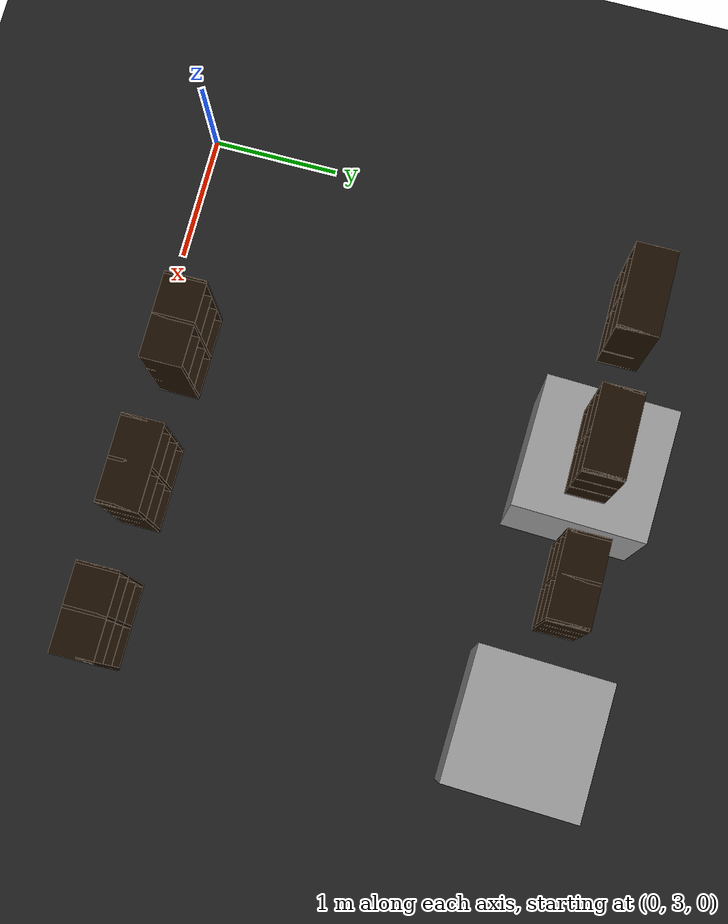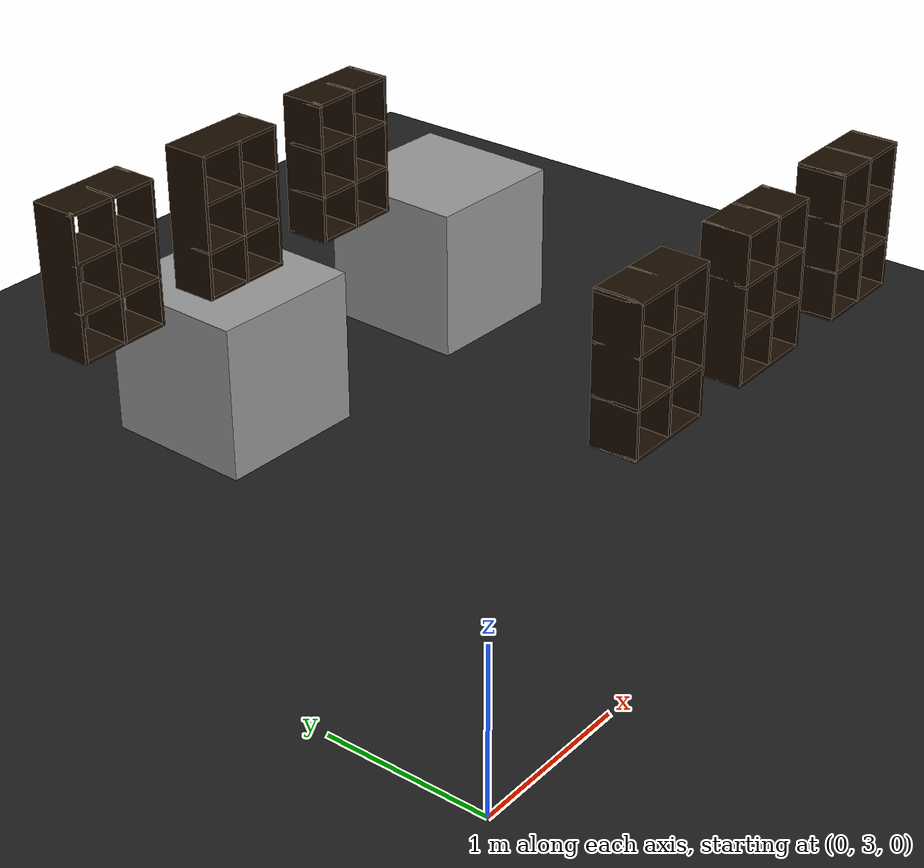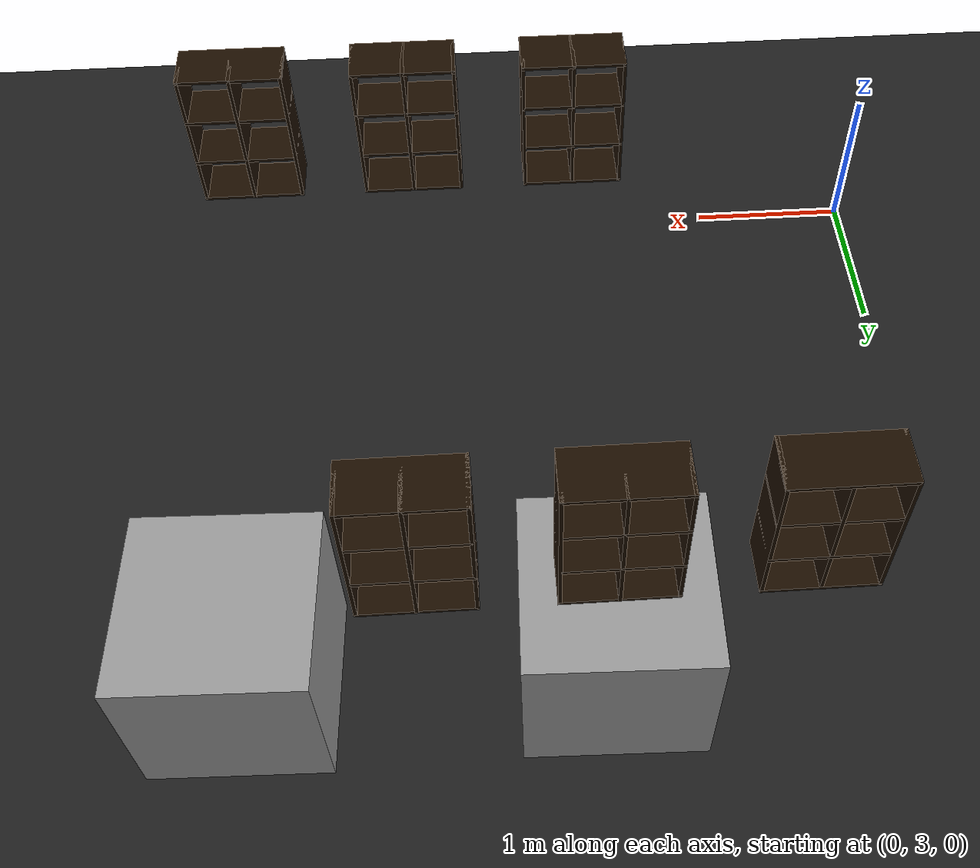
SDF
<sdf version="1.7">
 <world name="default">
  <model name="ground_plane">
   <static>1</static>
   <link name="link">
    <collision name="collision">
     <geometry><plane><normal>0 0 1</normal><size>100 100</size></plane></geometry>
     <surface><friction><ode><mu>100</mu><mu2>50</mu2></ode></friction></surface>
    </collision>
    <visual name="visual">
     <cast_shadows>0</cast_shadows>
     <geometry><plane><normal>0 0 1</normal><size>100 100</size></plane></geometry>
     <material>
      <script><uri>file://media/materials/scripts/gazebo.material</uri><name>Gazebo/BlackTransparent</name></script>
     </material>
    </visual>
   </link>
  </model>
  <model name="unit_box_7">
   <pose>1.99571 6.51837 0.5 0 0 -0.030066</pose>
   <link name="link">
    <inertial>
     <mass>1</mass>
     <inertia>
      <ixx>0.166667</ixx>
      <ixy>0</ixy>
      <ixz>0</ixz>
      <iyy>0.166667</iyy>
      <iyz>0</iyz>
      <izz>0.166667</izz>
     </inertia>
    </inertial>
    <collision name="collision"><geometry><box><size>1 1 1</size></box></geometry></collision>
    <visual name="visual">
     <geometry><box><size>1 1 1</size></box></geometry>
     <material>
      <script><name>Gazebo/Grey</name><uri>file://media/materials/scripts/gazebo.material</uri></script>
     </material>
    </visual>
   </link>
  </model>
  <model name="unit_box_8">
   <pose>3.99685 6.50298 0.5 0 0 -0.030583</pose>
   <link name="link">
    <inertial>
     <mass>1</mass>
     <inertia>
      <ixx>0.166667</ixx>
      <ixy>0</ixy>
      <ixz>0</ixz>
      <iyy>0.166667</iyy>
      <iyz>0</iyz>
      <izz>0.166667</izz>
     </inertia>
    </inertial>
    <collision name="collision"><geometry><box><size>1 1 1</size></box></geometry></collision>
    <visual name="visual">
     <geometry><box><size>1 1 1</size></box></geometry>
     <material>
      <script><name>Gazebo/Grey</name><uri>file://media/materials/scripts/gazebo.material</uri></script>
     </material>
    </visual>
   </link>
  </model>
  <model name="6_Cube_StorageE_clone_7">
   <link name="Wall_0">
    <pose>0 0 0.01 0 -0 0</pose>
    <inertial>
     <mass>1.6201</mass>
     <inertia><ixx>0.0119</ixx><iyy>0.0631</iyy><izz>0.0513</izz><ixy>0</ixy><ixz>0</ixz><iyz>0</iyz></inertia>
    </inertial>
    <collision name="Wall_0_Collision"><geometry><box><size>0.616 0.296 0.02</size></box></geometry></collision>
    <visual name="Wall_0_Visual">
     <geometry><box><size>0.616 0.296 0.02</size></box></geometry>
     <material>
      <script><uri>file://media/materials/scripts/gazebo.material</uri><name>Gazebo/Grey</name></script>
      <ambient>0.105882 0.0509804 0 1</ambient>
     </material>
    </visual>
   </link>
   <joint name="0_2" type="fixed">
    <pose>-0.308 0 0 0 -0 0</pose>
    <parent>Wall_2</parent>
    <child>Wall_0</child>
    <axis><xyz>1 0 0</xyz><limit><lower>-1e+16</lower><upper>1e+16</upper></limit></axis>
   </joint>
   <joint name="0_12" type="fixed">
    <parent>Wall_12</parent>
    <child>Wall_0</child>
    <axis><xyz>0 0 1</xyz><limit><lower>-1e+16</lower><upper>1e+16</upper></limit></axis>
   </joint>
   <joint name="0_4" type="fixed">
    <pose>0.308 0 0 0 -0 0</pose>
    <parent>Wall_4</parent>
    <child>Wall_0</child>
    <axis><xyz>1 0 0</xyz><limit><lower>-1e+16</lower><upper>1e+16</upper></limit></axis>
   </joint>
   <link name="Wall_10">
    <pose>0 0 0.61 0 -0 0</pose>
    <inertial>
     <mass>1.6201</mass>
     <inertia><ixx>0.0119</ixx><iyy>0.0631</iyy><izz>0.0513</izz><ixy>0</ixy><ixz>0</ixz><iyz>0</iyz></inertia>
    </inertial>
    <collision name="Wall_10_Collision"><geometry><box><size>0.616 0.296 0.02</size></box></geometry></collision>
    <visual name="Wall_10_Visual">
     <geometry><box><size>0.616 0.296 0.02</size></box></geometry>
     <material>
      <script><uri>file://media/materials/scripts/gazebo.material</uri><name>Gazebo/Grey</name></script>
      <ambient>0.105882 0.0509804 0 1</ambient>
     </material>
    </visual>
   </link>
   <joint name="10_2" type="fixed">
    <pose>-0.308 0 0 0 -0 0</pose>
    <parent>Wall_2</parent>
    <child>Wall_10</child>
    <axis><xyz>1 0 0</xyz><limit><lower>-1e+16</lower><upper>1e+16</upper></limit></axis>
   </joint>
   <joint name="10_12" type="fixed">
    <parent>Wall_12</parent>
    <child>Wall_10</child>
    <axis><xyz>0 0 1</xyz><limit><lower>-1e+16</lower><upper>1e+16</upper></limit></axis>
   </joint>
   <joint name="10_4" type="fixed">
    <pose>0.308 0 0 0 -0 0</pose>
    <parent>Wall_4</parent>
    <child>Wall_10</child>
    <axis><xyz>1 0 0</xyz><limit><lower>-1e+16</lower><upper>1e+16</upper></limit></axis>
   </joint>
   <link name="Wall_12">
    <pose>0 0 0.4575 0 -0 0</pose>
    <inertial>
     <mass>2.4065</mass>
     <inertia><ixx>0.0177</ixx><iyy>0.1855</iyy><izz>0.168</izz><ixy>0</ixy><ixz>0</ixz><iyz>0</iyz></inertia>
    </inertial>
    <collision name="Wall_12_Collision"><geometry><box><size>0.02 0.296 0.915</size></box></geometry></collision>
    <visual name="Wall_12_Visual">
     <geometry><box><size>0.02 0.296 0.915</size></box></geometry>
     <material>
      <script><uri>file://media/materials/scripts/gazebo.material</uri><name>Gazebo/Grey</name></script>
      <ambient>0.105882 0.0509804 0 1</ambient>
     </material>
    </visual>
   </link>
   <link name="Wall_2">
    <pose>-0.298 0 0.4575 0 -0 0</pose>
    <inertial>
     <mass>2.4065</mass>
     <inertia><ixx>0.0177</ixx><iyy>0.1855</iyy><izz>0.168</izz><ixy>0</ixy><ixz>0</ixz><iyz>0</iyz></inertia>
    </inertial>
    <collision name="Wall_2_Collision"><geometry><box><size>0.02 0.296 0.915</size></box></geometry></collision>
    <visual name="Wall_2_Visual">
     <geometry><box><size>0.02 0.296 0.915</size></box></geometry>
     <material>
      <script><uri>file://media/materials/scripts/gazebo.material</uri><name>Gazebo/Grey</name></script>
      <ambient>0.105882 0.0509804 0 1</ambient>
     </material>
    </visual>
   </link>
   <link name="Wall_4">
    <pose>0.298 0 0.4575 0 -0 0</pose>
    <inertial>
     <mass>2.4065</mass>
     <inertia><ixx>0.0177</ixx><iyy>0.1855</iyy><izz>0.168</izz><ixy>0</ixy><ixz>0</ixz><iyz>0</iyz></inertia>
    </inertial>
    <collision name="Wall_4_Collision"><geometry><box><size>0.02 0.296 0.915</size></box></geometry></collision>
    <visual name="Wall_4_Visual">
     <geometry><box><size>0.02 0.296 0.915</size></box></geometry>
     <material>
      <script><uri>file://media/materials/scripts/gazebo.material</uri><name>Gazebo/Grey</name></script>
      <ambient>0.105882 0.0509804 0 1</ambient>
     </material>
    </visual>
   </link>
   <link name="Wall_6">
    <pose>0 0 0.905 0 -0 0</pose>
    <inertial>
     <mass>1.6201</mass>
     <inertia><ixx>0.0119</ixx><iyy>0.0631</iyy><izz>0.0513</izz><ixy>0</ixy><ixz>0</ixz><iyz>0</iyz></inertia>
    </inertial>
    <collision name="Wall_6_Collision"><geometry><box><size>0.616 0.296 0.02</size></box></geometry></collision>
    <visual name="Wall_6_Visual">
     <geometry><box><size>0.616 0.296 0.02</size></box></geometry>
     <material>
      <script><uri>file://media/materials/scripts/gazebo.material</uri><name>Gazebo/Grey</name></script>
      <ambient>0.105882 0.0509804 0 1</ambient>
     </material>
    </visual>
   </link>
   <joint name="6_2" type="fixed">
    <pose>-0.308 0 0 0 -0 0</pose>
    <parent>Wall_2</parent>
    <child>Wall_6</child>
    <axis><xyz>2 0 0</xyz><limit><lower>-1e+16</lower><upper>1e+16</upper></limit></axis>
   </joint>
   <joint name="6_12" type="fixed">
    <parent>Wall_12</parent>
    <child>Wall_6</child>
    <axis><xyz>0 0 1</xyz><limit><lower>-1e+16</lower><upper>1e+16</upper></limit></axis>
   </joint>
   <joint name="6_4" type="fixed">
    <pose>0.308 0 0 0 -0 0</pose>
    <parent>Wall_4</parent>
    <child>Wall_6</child>
    <axis><xyz>1 0 0</xyz><limit><lower>-1e+16</lower><upper>1e+16</upper></limit></axis>
   </joint>
   <link name="Wall_8">
    <pose>0 0 0.305 0 -0 0</pose>
    <inertial>
     <mass>1.6201</mass>
     <inertia><ixx>0.0119</ixx><iyy>0.0631</iyy><izz>0.0513</izz><ixy>0</ixy><ixz>0</ixz><iyz>0</iyz></inertia>
    </inertial>
    <collision name="Wall_8_Collision"><geometry><box><size>0.616 0.296 0.02</size></box></geometry></collision>
    <visual name="Wall_8_Visual">
     <geometry><box><size>0.616 0.296 0.02</size></box></geometry>
     <material>
      <script><uri>file://media/materials/scripts/gazebo.material</uri><name>Gazebo/Grey</name></script>
      <ambient>0.105882 0.0509804 0 1</ambient>
     </material>
    </visual>
   </link>
   <joint name="8_2" type="fixed">
    <pose>-0.308 0 0 0 -0 0</pose>
    <parent>Wall_2</parent>
    <child>Wall_8</child>
    <axis><xyz>1 0 0</xyz><limit><lower>-1e+16</lower><upper>1e+16</upper></limit></axis>
   </joint>
   <joint name="8_12" type="fixed">
    <parent>Wall_12</parent>
    <child>Wall_8</child>
    <axis><xyz>0 0 1</xyz><limit><lower>-1e+16</lower><upper>1e+16</upper></limit></axis>
   </joint>
   <joint name="8_4" type="fixed">
    <pose>0.308 0 0 0 -0 0</pose>
    <parent>Wall_4</parent>
    <child>Wall_8</child>
    <axis><xyz>1 0 0</xyz><limit><lower>-1e+16</lower><upper>1e+16</upper></limit></axis>
   </joint>
   <static>1</static>
   <pose>1 6.5 1.01 0 -0 0</pose>
  </model>
  <model name="6_Cube_StorageE_clone_8">
   <link name="Wall_0">
    <pose>0 0 0.01 0 -0 0</pose>
    <inertial>
     <mass>1.6201</mass>
     <inertia><ixx>0.0119</ixx><iyy>0.0631</iyy><izz>0.0513</izz><ixy>0</ixy><ixz>0</ixz><iyz>0</iyz></inertia>
    </inertial>
    <collision name="Wall_0_Collision"><geometry><box><size>0.616 0.296 0.02</size></box></geometry></collision>
    <visual name="Wall_0_Visual">
     <geometry><box><size>0.616 0.296 0.02</size></box></geometry>
     <material>
      <script><uri>file://media/materials/scripts/gazebo.material</uri><name>Gazebo/Grey</name></script>
      <ambient>0.105882 0.0509804 0 1</ambient>
     </material>
    </visual>
   </link>
   <joint name="0_2" type="fixed">
    <pose>-0.308 0 0 0 -0 0</pose>
    <parent>Wall_2</parent>
    <child>Wall_0</child>
    <axis><xyz>1 0 0</xyz><limit><lower>-1e+16</lower><upper>1e+16</upper></limit></axis>
   </joint>
   <joint name="0_12" type="fixed">
    <parent>Wall_12</parent>
    <child>Wall_0</child>
    <axis><xyz>0 0 1</xyz><limit><lower>-1e+16</lower><upper>1e+16</upper></limit></axis>
   </joint>
   <joint name="0_4" type="fixed">
    <pose>0.308 0 0 0 -0 0</pose>
    <parent>Wall_4</parent>
    <child>Wall_0</child>
    <axis><xyz>1 0 0</xyz><limit><lower>-1e+16</lower><upper>1e+16</upper></limit></axis>
   </joint>
   <link name="Wall_10">
    <pose>0 0 0.61 0 -0 0</pose>
    <inertial>
     <mass>1.6201</mass>
     <inertia><ixx>0.0119</ixx><iyy>0.0631</iyy><izz>0.0513</izz><ixy>0</ixy><ixz>0</ixz><iyz>0</iyz></inertia>
    </inertial>
    <collision name="Wall_10_Collision"><geometry><box><size>0.616 0.296 0.02</size></box></geometry></collision>
    <visual name="Wall_10_Visual">
     <geometry><box><size>0.616 0.296 0.02</size></box></geometry>
     <material>
      <script><uri>file://media/materials/scripts/gazebo.material</uri><name>Gazebo/Grey</name></script>
      <ambient>0.105882 0.0509804 0 1</ambient>
     </material>
    </visual>
   </link>
   <joint name="10_2" type="fixed">
    <pose>-0.308 0 0 0 -0 0</pose>
    <parent>Wall_2</parent>
    <child>Wall_10</child>
    <axis><xyz>1 0 0</xyz><limit><lower>-1e+16</lower><upper>1e+16</upper></limit></axis>
   </joint>
   <joint name="10_12" type="fixed">
    <parent>Wall_12</parent>
    <child>Wall_10</child>
    <axis><xyz>0 0 1</xyz><limit><lower>-1e+16</lower><upper>1e+16</upper></limit></axis>
   </joint>
   <joint name="10_4" type="fixed">
    <pose>0.308 0 0 0 -0 0</pose>
    <parent>Wall_4</parent>
    <child>Wall_10</child>
    <axis><xyz>1 0 0</xyz><limit><lower>-1e+16</lower><upper>1e+16</upper></limit></axis>
   </joint>
   <link name="Wall_12">
    <pose>0 0 0.4575 0 -0 0</pose>
    <inertial>
     <mass>2.4065</mass>
     <inertia><ixx>0.0177</ixx><iyy>0.1855</iyy><izz>0.168</izz><ixy>0</ixy><ixz>0</ixz><iyz>0</iyz></inertia>
    </inertial>
    <collision name="Wall_12_Collision"><geometry><box><size>0.02 0.296 0.915</size></box></geometry></collision>
    <visual name="Wall_12_Visual">
     <geometry><box><size>0.02 0.296 0.915</size></box></geometry>
     <material>
      <script><uri>file://media/materials/scripts/gazebo.material</uri><name>Gazebo/Grey</name></script>
      <ambient>0.105882 0.0509804 0 1</ambient>
     </material>
    </visual>
   </link>
   <link name="Wall_2">
    <pose>-0.298 0 0.4575 0 -0 0</pose>
    <inertial>
     <mass>2.4065</mass>
     <inertia><ixx>0.0177</ixx><iyy>0.1855</iyy><izz>0.168</izz><ixy>0</ixy><ixz>0</ixz><iyz>0</iyz></inertia>
    </inertial>
    <collision name="Wall_2_Collision"><geometry><box><size>0.02 0.296 0.915</size></box></geometry></collision>
    <visual name="Wall_2_Visual">
     <geometry><box><size>0.02 0.296 0.915</size></box></geometry>
     <material>
      <script><uri>file://media/materials/scripts/gazebo.material</uri><name>Gazebo/Grey</name></script>
      <ambient>0.105882 0.0509804 0 1</ambient>
     </material>
    </visual>
   </link>
   <link name="Wall_4">
    <pose>0.298 0 0.4575 0 -0 0</pose>
    <inertial>
     <mass>2.4065</mass>
     <inertia><ixx>0.0177</ixx><iyy>0.1855</iyy><izz>0.168</izz><ixy>0</ixy><ixz>0</ixz><iyz>0</iyz></inertia>
    </inertial>
    <collision name="Wall_4_Collision"><geometry><box><size>0.02 0.296 0.915</size></box></geometry></collision>
    <visual name="Wall_4_Visual">
     <geometry><box><size>0.02 0.296 0.915</size></box></geometry>
     <material>
      <script><uri>file://media/materials/scripts/gazebo.material</uri><name>Gazebo/Grey</name></script>
      <ambient>0.105882 0.0509804 0 1</ambient>
     </material>
    </visual>
   </link>
   <link name="Wall_6">
    <pose>0 0 0.905 0 -0 0</pose>
    <inertial>
     <mass>1.6201</mass>
     <inertia><ixx>0.0119</ixx><iyy>0.0631</iyy><izz>0.0513</izz><ixy>0</ixy><ixz>0</ixz><iyz>0</iyz></inertia>
    </inertial>
    <collision name="Wall_6_Collision"><geometry><box><size>0.616 0.296 0.02</size></box></geometry></collision>
    <visual name="Wall_6_Visual">
     <geometry><box><size>0.616 0.296 0.02</size></box></geometry>
     <material>
      <script><uri>file://media/materials/scripts/gazebo.material</uri><name>Gazebo/Grey</name></script>
      <ambient>0.105882 0.0509804 0 1</ambient>
     </material>
    </visual>
   </link>
   <joint name="6_2" type="fixed">
    <pose>-0.308 0 0 0 -0 0</pose>
    <parent>Wall_2</parent>
    <child>Wall_6</child>
    <axis><xyz>2 0 0</xyz><limit><lower>-1e+16</lower><upper>1e+16</upper></limit></axis>
   </joint>
   <joint name="6_12" type="fixed">
    <parent>Wall_12</parent>
    <child>Wall_6</child>
    <axis><xyz>0 0 1</xyz><limit><lower>-1e+16</lower><upper>1e+16</upper></limit></axis>
   </joint>
   <joint name="6_4" type="fixed">
    <pose>0.308 0 0 0 -0 0</pose>
    <parent>Wall_4</parent>
    <child>Wall_6</child>
    <axis><xyz>1 0 0</xyz><limit><lower>-1e+16</lower><upper>1e+16</upper></limit></axis>
   </joint>
   <link name="Wall_8">
    <pose>0 0 0.305 0 -0 0</pose>
    <inertial>
     <mass>1.6201</mass>
     <inertia><ixx>0.0119</ixx><iyy>0.0631</iyy><izz>0.0513</izz><ixy>0</ixy><ixz>0</ixz><iyz>0</iyz></inertia>
    </inertial>
    <collision name="Wall_8_Collision"><geometry><box><size>0.616 0.296 0.02</size></box></geometry></collision>
    <visual name="Wall_8_Visual">
     <geometry><box><size>0.616 0.296 0.02</size></box></geometry>
     <material>
      <script><uri>file://media/materials/scripts/gazebo.material</uri><name>Gazebo/Grey</name></script>
      <ambient>0.105882 0.0509804 0 1</ambient>
     </material>
    </visual>
   </link>
   <joint name="8_2" type="fixed">
    <pose>-0.308 0 0 0 -0 0</pose>
    <parent>Wall_2</parent>
    <child>Wall_8</child>
    <axis><xyz>1 0 0</xyz><limit><lower>-1e+16</lower><upper>1e+16</upper></limit></axis>
   </joint>
   <joint name="8_12" type="fixed">
    <parent>Wall_12</parent>
    <child>Wall_8</child>
    <axis><xyz>0 0 1</xyz><limit><lower>-1e+16</lower><upper>1e+16</upper></limit></axis>
   </joint>
   <joint name="8_4" type="fixed">
    <pose>0.308 0 0 0 -0 0</pose>
    <parent>Wall_4</parent>
    <child>Wall_8</child>
    <axis><xyz>1 0 0</xyz><limit><lower>-1e+16</lower><upper>1e+16</upper></limit></axis>
   </joint>
   <static>1</static>
   <pose>2 6.5 1.01 0 -0 0</pose>
  </model>
  <model name="6_Cube_StorageE_clone_9">
   <link name="Wall_0">
    <pose>0 0 0.01 0 -0 0</pose>
    <inertial>
     <mass>1.6201</mass>
     <inertia><ixx>0.0119</ixx><iyy>0.0631</iyy><izz>0.0513</izz><ixy>0</ixy><ixz>0</ixz><iyz>0</iyz></inertia>
    </inertial>
    <collision name="Wall_0_Collision"><geometry><box><size>0.616 0.296 0.02</size></box></geometry></collision>
    <visual name="Wall_0_Visual">
     <geometry><box><size>0.616 0.296 0.02</size></box></geometry>
     <material>
      <script><uri>file://media/materials/scripts/gazebo.material</uri><name>Gazebo/Grey</name></script>
      <ambient>0.105882 0.0509804 0 1</ambient>
     </material>
    </visual>
   </link>
   <joint name="0_2" type="fixed">
    <pose>-0.308 0 0 0 -0 0</pose>
    <parent>Wall_2</parent>
    <child>Wall_0</child>
    <axis><xyz>1 0 0</xyz><limit><lower>-1e+16</lower><upper>1e+16</upper></limit></axis>
   </joint>
   <joint name="0_12" type="fixed">
    <parent>Wall_12</parent>
    <child>Wall_0</child>
    <axis><xyz>0 0 1</xyz><limit><lower>-1e+16</lower><upper>1e+16</upper></limit></axis>
   </joint>
   <joint name="0_4" type="fixed">
    <pose>0.308 0 0 0 -0 0</pose>
    <parent>Wall_4</parent>
    <child>Wall_0</child>
    <axis><xyz>1 0 0</xyz><limit><lower>-1e+16</lower><upper>1e+16</upper></limit></axis>
   </joint>
   <link name="Wall_10">
    <pose>0 0 0.61 0 -0 0</pose>
    <inertial>
     <mass>1.6201</mass>
     <inertia><ixx>0.0119</ixx><iyy>0.0631</iyy><izz>0.0513</izz><ixy>0</ixy><ixz>0</ixz><iyz>0</iyz></inertia>
    </inertial>
    <collision name="Wall_10_Collision"><geometry><box><size>0.616 0.296 0.02</size></box></geometry></collision>
    <visual name="Wall_10_Visual">
     <geometry><box><size>0.616 0.296 0.02</size></box></geometry>
     <material>
      <script><uri>file://media/materials/scripts/gazebo.material</uri><name>Gazebo/Grey</name></script>
      <ambient>0.105882 0.0509804 0 1</ambient>
     </material>
    </visual>
   </link>
   <joint name="10_2" type="fixed">
    <pose>-0.308 0 0 0 -0 0</pose>
    <parent>Wall_2</parent>
    <child>Wall_10</child>
    <axis><xyz>1 0 0</xyz><limit><lower>-1e+16</lower><upper>1e+16</upper></limit></axis>
   </joint>
   <joint name="10_12" type="fixed">
    <parent>Wall_12</parent>
    <child>Wall_10</child>
    <axis><xyz>0 0 1</xyz><limit><lower>-1e+16</lower><upper>1e+16</upper></limit></axis>
   </joint>
   <joint name="10_4" type="fixed">
    <pose>0.308 0 0 0 -0 0</pose>
    <parent>Wall_4</parent>
    <child>Wall_10</child>
    <axis><xyz>1 0 0</xyz><limit><lower>-1e+16</lower><upper>1e+16</upper></limit></axis>
   </joint>
   <link name="Wall_12">
    <pose>0 0 0.4575 0 -0 0</pose>
    <inertial>
     <mass>2.4065</mass>
     <inertia><ixx>0.0177</ixx><iyy>0.1855</iyy><izz>0.168</izz><ixy>0</ixy><ixz>0</ixz><iyz>0</iyz></inertia>
    </inertial>
    <collision name="Wall_12_Collision"><geometry><box><size>0.02 0.296 0.915</size></box></geometry></collision>
    <visual name="Wall_12_Visual">
     <geometry><box><size>0.02 0.296 0.915</size></box></geometry>
     <material>
      <script><uri>file://media/materials/scripts/gazebo.material</uri><name>Gazebo/Grey</name></script>
      <ambient>0.105882 0.0509804 0 1</ambient>
     </material>
    </visual>
   </link>
   <link name="Wall_2">
    <pose>-0.298 0 0.4575 0 -0 0</pose>
    <inertial>
     <mass>2.4065</mass>
     <inertia><ixx>0.0177</ixx><iyy>0.1855</iyy><izz>0.168</izz><ixy>0</ixy><ixz>0</ixz><iyz>0</iyz></inertia>
    </inertial>
    <collision name="Wall_2_Collision"><geometry><box><size>0.02 0.296 0.915</size></box></geometry></collision>
    <visual name="Wall_2_Visual">
     <geometry><box><size>0.02 0.296 0.915</size></box></geometry>
     <material>
      <script><uri>file://media/materials/scripts/gazebo.material</uri><name>Gazebo/Grey</name></script>
      <ambient>0.105882 0.0509804 0 1</ambient>
     </material>
    </visual>
   </link>
   <link name="Wall_4">
    <pose>0.298 0 0.4575 0 -0 0</pose>
    <inertial>
     <mass>2.4065</mass>
     <inertia><ixx>0.0177</ixx><iyy>0.1855</iyy><izz>0.168</izz><ixy>0</ixy><ixz>0</ixz><iyz>0</iyz></inertia>
    </inertial>
    <collision name="Wall_4_Collision"><geometry><box><size>0.02 0.296 0.915</size></box></geometry></collision>
    <visual name="Wall_4_Visual">
     <geometry><box><size>0.02 0.296 0.915</size></box></geometry>
     <material>
      <script><uri>file://media/materials/scripts/gazebo.material</uri><name>Gazebo/Grey</name></script>
      <ambient>0.105882 0.0509804 0 1</ambient>
     </material>
    </visual>
   </link>
   <link name="Wall_6">
    <pose>0 0 0.905 0 -0 0</pose>
    <inertial>
     <mass>1.6201</mass>
     <inertia><ixx>0.0119</ixx><iyy>0.0631</iyy><izz>0.0513</izz><ixy>0</ixy><ixz>0</ixz><iyz>0</iyz></inertia>
    </inertial>
    <collision name="Wall_6_Collision"><geometry><box><size>0.616 0.296 0.02</size></box></geometry></collision>
    <visual name="Wall_6_Visual">
     <geometry><box><size>0.616 0.296 0.02</size></box></geometry>
     <material>
      <script><uri>file://media/materials/scripts/gazebo.material</uri><name>Gazebo/Grey</name></script>
      <ambient>0.105882 0.0509804 0 1</ambient>
     </material>
    </visual>
   </link>
   <joint name="6_2" type="fixed">
    <pose>-0.308 0 0 0 -0 0</pose>
    <parent>Wall_2</parent>
    <child>Wall_6</child>
    <axis><xyz>2 0 0</xyz><limit><lower>-1e+16</lower><upper>1e+16</upper></limit></axis>
   </joint>
   <joint name="6_12" type="fixed">
    <parent>Wall_12</parent>
    <child>Wall_6</child>
    <axis><xyz>0 0 1</xyz><limit><lower>-1e+16</lower><upper>1e+16</upper></limit></axis>
   </joint>
   <joint name="6_4" type="fixed">
    <pose>0.308 0 0 0 -0 0</pose>
    <parent>Wall_4</parent>
    <child>Wall_6</child>
    <axis><xyz>1 0 0</xyz><limit><lower>-1e+16</lower><upper>1e+16</upper></limit></axis>
   </joint>
   <link name="Wall_8">
    <pose>0 0 0.305 0 -0 0</pose>
    <inertial>
     <mass>1.6201</mass>
     <inertia><ixx>0.0119</ixx><iyy>0.0631</iyy><izz>0.0513</izz><ixy>0</ixy><ixz>0</ixz><iyz>0</iyz></inertia>
    </inertial>
    <collision name="Wall_8_Collision"><geometry><box><size>0.616 0.296 0.02</size></box></geometry></collision>
    <visual name="Wall_8_Visual">
     <geometry><box><size>0.616 0.296 0.02</size></box></geometry>
     <material>
      <script><uri>file://media/materials/scripts/gazebo.material</uri><name>Gazebo/Grey</name></script>
      <ambient>0.105882 0.0509804 0 1</ambient>
     </material>
    </visual>
   </link>
   <joint name="8_2" type="fixed">
    <pose>-0.308 0 0 0 -0 0</pose>
    <parent>Wall_2</parent>
    <child>Wall_8</child>
    <axis><xyz>1 0 0</xyz><limit><lower>-1e+16</lower><upper>1e+16</upper></limit></axis>
   </joint>
   <joint name="8_12" type="fixed">
    <parent>Wall_12</parent>
    <child>Wall_8</child>
    <axis><xyz>0 0 1</xyz><limit><lower>-1e+16</lower><upper>1e+16</upper></limit></axis>
   </joint>
   <joint name="8_4" type="fixed">
    <pose>0.308 0 0 0 -0 0</pose>
    <parent>Wall_4</parent>
    <child>Wall_8</child>
    <axis><xyz>1 0 0</xyz><limit><lower>-1e+16</lower><upper>1e+16</upper></limit></axis>
   </joint>
   <static>1</static>
   <pose>3 6.5 1.01 0 -0 0</pose>
  </model>
  <model name="6_Cube_StorageE_clone_16">
   <link name="Wall_0">
    <pose>0 0 0.01 0 -0 0</pose>
    <inertial>
     <mass>1.6201</mass>
     <inertia><ixx>0.0119</ixx><iyy>0.0631</iyy><izz>0.0513</izz><ixy>0</ixy><ixz>0</ixz><iyz>0</iyz></inertia>
    </inertial>
    <collision name="Wall_0_Collision"><geometry><box><size>0.616 0.296 0.02</size></box></geometry></collision>
    <visual name="Wall_0_Visual">
     <geometry><box><size>0.616 0.296 0.02</size></box></geometry>
     <material>
      <script><uri>file://media/materials/scripts/gazebo.material</uri><name>Gazebo/Grey</name></script>
      <ambient>0.105882 0.0509804 0 1</ambient>
     </material>
    </visual>
   </link>
   <joint name="0_2" type="fixed">
    <pose>-0.308 0 0 0 -0 0</pose>
    <parent>Wall_2</parent>
    <child>Wall_0</child>
    <axis><xyz>1 0 0</xyz><limit><lower>-1e+16</lower><upper>1e+16</upper></limit></axis>
   </joint>
   <joint name="0_12" type="fixed">
    <parent>Wall_12</parent>
    <child>Wall_0</child>
    <axis><xyz>0 0 1</xyz><limit><lower>-1e+16</lower><upper>1e+16</upper></limit></axis>
   </joint>
   <joint name="0_4" type="fixed">
    <pose>0.308 0 0 0 -0 0</pose>
    <parent>Wall_4</parent>
    <child>Wall_0</child>
    <axis><xyz>1 0 0</xyz><limit><lower>-1e+16</lower><upper>1e+16</upper></limit></axis>
   </joint>
   <link name="Wall_10">
    <pose>0 0 0.61 0 -0 0</pose>
    <inertial>
     <mass>1.6201</mass>
     <inertia><ixx>0.0119</ixx><iyy>0.0631</iyy><izz>0.0513</izz><ixy>0</ixy><ixz>0</ixz><iyz>0</iyz></inertia>
    </inertial>
    <collision name="Wall_10_Collision"><geometry><box><size>0.616 0.296 0.02</size></box></geometry></collision>
    <visual name="Wall_10_Visual">
     <geometry><box><size>0.616 0.296 0.02</size></box></geometry>
     <material>
      <script><uri>file://media/materials/scripts/gazebo.material</uri><name>Gazebo/Grey</name></script>
      <ambient>0.105882 0.0509804 0 1</ambient>
     </material>
    </visual>
   </link>
   <joint name="10_2" type="fixed">
    <pose>-0.308 0 0 0 -0 0</pose>
    <parent>Wall_2</parent>
    <child>Wall_10</child>
    <axis><xyz>1 0 0</xyz><limit><lower>-1e+16</lower><upper>1e+16</upper></limit></axis>
   </joint>
   <joint name="10_12" type="fixed">
    <parent>Wall_12</parent>
    <child>Wall_10</child>
    <axis><xyz>0 0 1</xyz><limit><lower>-1e+16</lower><upper>1e+16</upper></limit></axis>
   </joint>
   <joint name="10_4" type="fixed">
    <pose>0.308 0 0 0 -0 0</pose>
    <parent>Wall_4</parent>
    <child>Wall_10</child>
    <axis><xyz>1 0 0</xyz><limit><lower>-1e+16</lower><upper>1e+16</upper></limit></axis>
   </joint>
   <link name="Wall_12">
    <pose>0 0 0.4575 0 -0 0</pose>
    <inertial>
     <mass>2.4065</mass>
     <inertia><ixx>0.0177</ixx><iyy>0.1855</iyy><izz>0.168</izz><ixy>0</ixy><ixz>0</ixz><iyz>0</iyz></inertia>
    </inertial>
    <collision name="Wall_12_Collision"><geometry><box><size>0.02 0.296 0.915</size></box></geometry></collision>
    <visual name="Wall_12_Visual">
     <geometry><box><size>0.02 0.296 0.915</size></box></geometry>
     <material>
      <script><uri>file://media/materials/scripts/gazebo.material</uri><name>Gazebo/Grey</name></script>
      <ambient>0.105882 0.0509804 0 1</ambient>
     </material>
    </visual>
   </link>
   <link name="Wall_2">
    <pose>-0.298 0 0.4575 0 -0 0</pose>
    <inertial>
     <mass>2.4065</mass>
     <inertia><ixx>0.0177</ixx><iyy>0.1855</iyy><izz>0.168</izz><ixy>0</ixy><ixz>0</ixz><iyz>0</iyz></inertia>
    </inertial>
    <collision name="Wall_2_Collision"><geometry><box><size>0.02 0.296 0.915</size></box></geometry></collision>
    <visual name="Wall_2_Visual">
     <geometry><box><size>0.02 0.296 0.915</size></box></geometry>
     <material>
      <script><uri>file://media/materials/scripts/gazebo.material</uri><name>Gazebo/Grey</name></script>
      <ambient>0.105882 0.0509804 0 1</ambient>
     </material>
    </visual>
   </link>
   <link name="Wall_4">
    <pose>0.298 0 0.4575 0 -0 0</pose>
    <inertial>
     <mass>2.4065</mass>
     <inertia><ixx>0.0177</ixx><iyy>0.1855</iyy><izz>0.168</izz><ixy>0</ixy><ixz>0</ixz><iyz>0</iyz></inertia>
    </inertial>
    <collision name="Wall_4_Collision"><geometry><box><size>0.02 0.296 0.915</size></box></geometry></collision>
    <visual name="Wall_4_Visual">
     <geometry><box><size>0.02 0.296 0.915</size></box></geometry>
     <material>
      <script><uri>file://media/materials/scripts/gazebo.material</uri><name>Gazebo/Grey</name></script>
      <ambient>0.105882 0.0509804 0 1</ambient>
     </material>
    </visual>
   </link>
   <link name="Wall_6">
    <pose>0 0 0.905 0 -0 0</pose>
    <inertial>
     <mass>1.6201</mass>
     <inertia><ixx>0.0119</ixx><iyy>0.0631</iyy><izz>0.0513</izz><ixy>0</ixy><ixz>0</ixz><iyz>0</iyz></inertia>
    </inertial>
    <collision name="Wall_6_Collision"><geometry><box><size>0.616 0.296 0.02</size></box></geometry></collision>
    <visual name="Wall_6_Visual">
     <geometry><box><size>0.616 0.296 0.02</size></box></geometry>
     <material>
      <script><uri>file://media/materials/scripts/gazebo.material</uri><name>Gazebo/Grey</name></script>
      <ambient>0.105882 0.0509804 0 1</ambient>
     </material>
    </visual>
   </link>
   <joint name="6_2" type="fixed">
    <pose>-0.308 0 0 0 -0 0</pose>
    <parent>Wall_2</parent>
    <child>Wall_6</child>
    <axis><xyz>2 0 0</xyz><limit><lower>-1e+16</lower><upper>1e+16</upper></limit></axis>
   </joint>
   <joint name="6_12" type="fixed">
    <parent>Wall_12</parent>
    <child>Wall_6</child>
    <axis><xyz>0 0 1</xyz><limit><lower>-1e+16</lower><upper>1e+16</upper></limit></axis>
   </joint>
   <joint name="6_4" type="fixed">
    <pose>0.308 0 0 0 -0 0</pose>
    <parent>Wall_4</parent>
    <child>Wall_6</child>
    <axis><xyz>1 0 0</xyz><limit><lower>-1e+16</lower><upper>1e+16</upper></limit></axis>
   </joint>
   <link name="Wall_8">
    <pose>0 0 0.305 0 -0 0</pose>
    <inertial>
     <mass>1.6201</mass>
     <inertia><ixx>0.0119</ixx><iyy>0.0631</iyy><izz>0.0513</izz><ixy>0</ixy><ixz>0</ixz><iyz>0</iyz></inertia>
    </inertial>
    <collision name="Wall_8_Collision"><geometry><box><size>0.616 0.296 0.02</size></box></geometry></collision>
    <visual name="Wall_8_Visual">
     <geometry><box><size>0.616 0.296 0.02</size></box></geometry>
     <material>
      <script><uri>file://media/materials/scripts/gazebo.material</uri><name>Gazebo/Grey</name></script>
      <ambient>0.105882 0.0509804 0 1</ambient>
     </material>
    </visual>
   </link>
   <joint name="8_2" type="fixed">
    <pose>-0.308 0 0 0 -0 0</pose>
    <parent>Wall_2</parent>
    <child>Wall_8</child>
    <axis><xyz>1 0 0</xyz><limit><lower>-1e+16</lower><upper>1e+16</upper></limit></axis>
   </joint>
   <joint name="8_12" type="fixed">
    <parent>Wall_12</parent>
    <child>Wall_8</child>
    <axis><xyz>0 0 1</xyz><limit><lower>-1e+16</lower><upper>1e+16</upper></limit></axis>
   </joint>
   <joint name="8_4" type="fixed">
    <pose>0.308 0 0 0 -0 0</pose>
    <parent>Wall_4</parent>
    <child>Wall_8</child>
    <axis><xyz>1 0 0</xyz><limit><lower>-1e+16</lower><upper>1e+16</upper></limit></axis>
   </joint>
   <static>1</static>
   <pose>4 3.5 1.01 0 -0 0</pose>
  </model>
  <model name="6_Cube_StorageE_clone_17">
   <link name="Wall_0">
    <pose>0 0 0.01 0 -0 0</pose>
    <inertial>
     <mass>1.6201</mass>
     <inertia><ixx>0.0119</ixx><iyy>0.0631</iyy><izz>0.0513</izz><ixy>0</ixy><ixz>0</ixz><iyz>0</iyz></inertia>
    </inertial>
    <collision name="Wall_0_Collision"><geometry><box><size>0.616 0.296 0.02</size></box></geometry></collision>
    <visual name="Wall_0_Visual">
     <geometry><box><size>0.616 0.296 0.02</size></box></geometry>
     <material>
      <script><uri>file://media/materials/scripts/gazebo.material</uri><name>Gazebo/Grey</name></script>
      <ambient>0.105882 0.0509804 0 1</ambient>
     </material>
    </visual>
   </link>
   <joint name="0_2" type="fixed">
    <pose>-0.308 0 0 0 -0 0</pose>
    <parent>Wall_2</parent>
    <child>Wall_0</child>
    <axis><xyz>1 0 0</xyz><limit><lower>-1e+16</lower><upper>1e+16</upper></limit></axis>
   </joint>
   <joint name="0_12" type="fixed">
    <parent>Wall_12</parent>
    <child>Wall_0</child>
    <axis><xyz>0 0 1</xyz><limit><lower>-1e+16</lower><upper>1e+16</upper></limit></axis>
   </joint>
   <joint name="0_4" type="fixed">
    <pose>0.308 0 0 0 -0 0</pose>
    <parent>Wall_4</parent>
    <child>Wall_0</child>
    <axis><xyz>1 0 0</xyz><limit><lower>-1e+16</lower><upper>1e+16</upper></limit></axis>
   </joint>
   <link name="Wall_10">
    <pose>0 0 0.61 0 -0 0</pose>
    <inertial>
     <mass>1.6201</mass>
     <inertia><ixx>0.0119</ixx><iyy>0.0631</iyy><izz>0.0513</izz><ixy>0</ixy><ixz>0</ixz><iyz>0</iyz></inertia>
    </inertial>
    <collision name="Wall_10_Collision"><geometry><box><size>0.616 0.296 0.02</size></box></geometry></collision>
    <visual name="Wall_10_Visual">
     <geometry><box><size>0.616 0.296 0.02</size></box></geometry>
     <material>
      <script><uri>file://media/materials/scripts/gazebo.material</uri><name>Gazebo/Grey</name></script>
      <ambient>0.105882 0.0509804 0 1</ambient>
     </material>
    </visual>
   </link>
   <joint name="10_2" type="fixed">
    <pose>-0.308 0 0 0 -0 0</pose>
    <parent>Wall_2</parent>
    <child>Wall_10</child>
    <axis><xyz>1 0 0</xyz><limit><lower>-1e+16</lower><upper>1e+16</upper></limit></axis>
   </joint>
   <joint name="10_12" type="fixed">
    <parent>Wall_12</parent>
    <child>Wall_10</child>
    <axis><xyz>0 0 1</xyz><limit><lower>-1e+16</lower><upper>1e+16</upper></limit></axis>
   </joint>
   <joint name="10_4" type="fixed">
    <pose>0.308 0 0 0 -0 0</pose>
    <parent>Wall_4</parent>
    <child>Wall_10</child>
    <axis><xyz>1 0 0</xyz><limit><lower>-1e+16</lower><upper>1e+16</upper></limit></axis>
   </joint>
   <link name="Wall_12">
    <pose>0 0 0.4575 0 -0 0</pose>
    <inertial>
     <mass>2.4065</mass>
     <inertia><ixx>0.0177</ixx><iyy>0.1855</iyy><izz>0.168</izz><ixy>0</ixy><ixz>0</ixz><iyz>0</iyz></inertia>
    </inertial>
    <collision name="Wall_12_Collision"><geometry><box><size>0.02 0.296 0.915</size></box></geometry></collision>
    <visual name="Wall_12_Visual">
     <geometry><box><size>0.02 0.296 0.915</size></box></geometry>
     <material>
      <script><uri>file://media/materials/scripts/gazebo.material</uri><name>Gazebo/Grey</name></script>
      <ambient>0.105882 0.0509804 0 1</ambient>
     </material>
    </visual>
   </link>
   <link name="Wall_2">
    <pose>-0.298 0 0.4575 0 -0 0</pose>
    <inertial>
     <mass>2.4065</mass>
     <inertia><ixx>0.0177</ixx><iyy>0.1855</iyy><izz>0.168</izz><ixy>0</ixy><ixz>0</ixz><iyz>0</iyz></inertia>
    </inertial>
    <collision name="Wall_2_Collision"><geometry><box><size>0.02 0.296 0.915</size></box></geometry></collision>
    <visual name="Wall_2_Visual">
     <geometry><box><size>0.02 0.296 0.915</size></box></geometry>
     <material>
      <script><uri>file://media/materials/scripts/gazebo.material</uri><name>Gazebo/Grey</name></script>
      <ambient>0.105882 0.0509804 0 1</ambient>
     </material>
    </visual>
   </link>
   <link name="Wall_4">
    <pose>0.298 0 0.4575 0 -0 0</pose>
    <inertial>
     <mass>2.4065</mass>
     <inertia><ixx>0.0177</ixx><iyy>0.1855</iyy><izz>0.168</izz><ixy>0</ixy><ixz>0</ixz><iyz>0</iyz></inertia>
    </inertial>
    <collision name="Wall_4_Collision"><geometry><box><size>0.02 0.296 0.915</size></box></geometry></collision>
    <visual name="Wall_4_Visual">
     <geometry><box><size>0.02 0.296 0.915</size></box></geometry>
     <material>
      <script><uri>file://media/materials/scripts/gazebo.material</uri><name>Gazebo/Grey</name></script>
      <ambient>0.105882 0.0509804 0 1</ambient>
     </material>
    </visual>
   </link>
   <link name="Wall_6">
    <pose>0 0 0.905 0 -0 0</pose>
    <inertial>
     <mass>1.6201</mass>
     <inertia><ixx>0.0119</ixx><iyy>0.0631</iyy><izz>0.0513</izz><ixy>0</ixy><ixz>0</ixz><iyz>0</iyz></inertia>
    </inertial>
    <collision name="Wall_6_Collision"><geometry><box><size>0.616 0.296 0.02</size></box></geometry></collision>
    <visual name="Wall_6_Visual">
     <geometry><box><size>0.616 0.296 0.02</size></box></geometry>
     <material>
      <script><uri>file://media/materials/scripts/gazebo.material</uri><name>Gazebo/Grey</name></script>
      <ambient>0.105882 0.0509804 0 1</ambient>
     </material>
    </visual>
   </link>
   <joint name="6_2" type="fixed">
    <pose>-0.308 0 0 0 -0 0</pose>
    <parent>Wall_2</parent>
    <child>Wall_6</child>
    <axis><xyz>2 0 0</xyz><limit><lower>-1e+16</lower><upper>1e+16</upper></limit></axis>
   </joint>
   <joint name="6_12" type="fixed">
    <parent>Wall_12</parent>
    <child>Wall_6</child>
    <axis><xyz>0 0 1</xyz><limit><lower>-1e+16</lower><upper>1e+16</upper></limit></axis>
   </joint>
   <joint name="6_4" type="fixed">
    <pose>0.308 0 0 0 -0 0</pose>
    <parent>Wall_4</parent>
    <child>Wall_6</child>
    <axis><xyz>1 0 0</xyz><limit><lower>-1e+16</lower><upper>1e+16</upper></limit></axis>
   </joint>
   <link name="Wall_8">
    <pose>0 0 0.305 0 -0 0</pose>
    <inertial>
     <mass>1.6201</mass>
     <inertia><ixx>0.0119</ixx><iyy>0.0631</iyy><izz>0.0513</izz><ixy>0</ixy><ixz>0</ixz><iyz>0</iyz></inertia>
    </inertial>
    <collision name="Wall_8_Collision"><geometry><box><size>0.616 0.296 0.02</size></box></geometry></collision>
    <visual name="Wall_8_Visual">
     <geometry><box><size>0.616 0.296 0.02</size></box></geometry>
     <material>
      <script><uri>file://media/materials/scripts/gazebo.material</uri><name>Gazebo/Grey</name></script>
      <ambient>0.105882 0.0509804 0 1</ambient>
     </material>
    </visual>
   </link>
   <joint name="8_2" type="fixed">
    <pose>-0.308 0 0 0 -0 0</pose>
    <parent>Wall_2</parent>
    <child>Wall_8</child>
    <axis><xyz>1 0 0</xyz><limit><lower>-1e+16</lower><upper>1e+16</upper></limit></axis>
   </joint>
   <joint name="8_12" type="fixed">
    <parent>Wall_12</parent>
    <child>Wall_8</child>
    <axis><xyz>0 0 1</xyz><limit><lower>-1e+16</lower><upper>1e+16</upper></limit></axis>
   </joint>
   <joint name="8_4" type="fixed">
    <pose>0.308 0 0 0 -0 0</pose>
    <parent>Wall_4</parent>
    <child>Wall_8</child>
    <axis><xyz>1 0 0</xyz><limit><lower>-1e+16</lower><upper>1e+16</upper></limit></axis>
   </joint>
   <static>1</static>
   <pose>3 3.5 1.01 0 -0 0</pose>
  </model>
  <model name="6_Cube_StorageE_clone_18">
   <link name="Wall_0">
    <pose>0 0 0.01 0 -0 0</pose>
    <inertial>
     <mass>1.6201</mass>
     <inertia><ixx>0.0119</ixx><iyy>0.0631</iyy><izz>0.0513</izz><ixy>0</ixy><ixz>0</ixz><iyz>0</iyz></inertia>
    </inertial>
    <collision name="Wall_0_Collision"><geometry><box><size>0.616 0.296 0.02</size></box></geometry></collision>
    <visual name="Wall_0_Visual">
     <geometry><box><size>0.616 0.296 0.02</size></box></geometry>
     <material>
      <script><uri>file://media/materials/scripts/gazebo.material</uri><name>Gazebo/Grey</name></script>
      <ambient>0.105882 0.0509804 0 1</ambient>
     </material>
    </visual>
   </link>
   <joint name="0_2" type="fixed">
    <pose>-0.308 0 0 0 -0 0</pose>
    <parent>Wall_2</parent>
    <child>Wall_0</child>
    <axis><xyz>1 0 0</xyz><limit><lower>-1e+16</lower><upper>1e+16</upper></limit></axis>
   </joint>
   <joint name="0_12" type="fixed">
    <parent>Wall_12</parent>
    <child>Wall_0</child>
    <axis><xyz>0 0 1</xyz><limit><lower>-1e+16</lower><upper>1e+16</upper></limit></axis>
   </joint>
   <joint name="0_4" type="fixed">
    <pose>0.308 0 0 0 -0 0</pose>
    <parent>Wall_4</parent>
    <child>Wall_0</child>
    <axis><xyz>1 0 0</xyz><limit><lower>-1e+16</lower><upper>1e+16</upper></limit></axis>
   </joint>
   <link name="Wall_10">
    <pose>0 0 0.61 0 -0 0</pose>
    <inertial>
     <mass>1.6201</mass>
     <inertia><ixx>0.0119</ixx><iyy>0.0631</iyy><izz>0.0513</izz><ixy>0</ixy><ixz>0</ixz><iyz>0</iyz></inertia>
    </inertial>
    <collision name="Wall_10_Collision"><geometry><box><size>0.616 0.296 0.02</size></box></geometry></collision>
    <visual name="Wall_10_Visual">
     <geometry><box><size>0.616 0.296 0.02</size></box></geometry>
     <material>
      <script><uri>file://media/materials/scripts/gazebo.material</uri><name>Gazebo/Grey</name></script>
      <ambient>0.105882 0.0509804 0 1</ambient>
     </material>
    </visual>
   </link>
   <joint name="10_2" type="fixed">
    <pose>-0.308 0 0 0 -0 0</pose>
    <parent>Wall_2</parent>
    <child>Wall_10</child>
    <axis><xyz>1 0 0</xyz><limit><lower>-1e+16</lower><upper>1e+16</upper></limit></axis>
   </joint>
   <joint name="10_12" type="fixed">
    <parent>Wall_12</parent>
    <child>Wall_10</child>
    <axis><xyz>0 0 1</xyz><limit><lower>-1e+16</lower><upper>1e+16</upper></limit></axis>
   </joint>
   <joint name="10_4" type="fixed">
    <pose>0.308 0 0 0 -0 0</pose>
    <parent>Wall_4</parent>
    <child>Wall_10</child>
    <axis><xyz>1 0 0</xyz><limit><lower>-1e+16</lower><upper>1e+16</upper></limit></axis>
   </joint>
   <link name="Wall_12">
    <pose>0 0 0.4575 0 -0 0</pose>
    <inertial>
     <mass>2.4065</mass>
     <inertia><ixx>0.0177</ixx><iyy>0.1855</iyy><izz>0.168</izz><ixy>0</ixy><ixz>0</ixz><iyz>0</iyz></inertia>
    </inertial>
    <collision name="Wall_12_Collision"><geometry><box><size>0.02 0.296 0.915</size></box></geometry></collision>
    <visual name="Wall_12_Visual">
     <geometry><box><size>0.02 0.296 0.915</size></box></geometry>
     <material>
      <script><uri>file://media/materials/scripts/gazebo.material</uri><name>Gazebo/Grey</name></script>
      <ambient>0.105882 0.0509804 0 1</ambient>
     </material>
    </visual>
   </link>
   <link name="Wall_2">
    <pose>-0.298 0 0.4575 0 -0 0</pose>
    <inertial>
     <mass>2.4065</mass>
     <inertia><ixx>0.0177</ixx><iyy>0.1855</iyy><izz>0.168</izz><ixy>0</ixy><ixz>0</ixz><iyz>0</iyz></inertia>
    </inertial>
    <collision name="Wall_2_Collision"><geometry><box><size>0.02 0.296 0.915</size></box></geometry></collision>
    <visual name="Wall_2_Visual">
     <geometry><box><size>0.02 0.296 0.915</size></box></geometry>
     <material>
      <script><uri>file://media/materials/scripts/gazebo.material</uri><name>Gazebo/Grey</name></script>
      <ambient>0.105882 0.0509804 0 1</ambient>
     </material>
    </visual>
   </link>
   <link name="Wall_4">
    <pose>0.298 0 0.4575 0 -0 0</pose>
    <inertial>
     <mass>2.4065</mass>
     <inertia><ixx>0.0177</ixx><iyy>0.1855</iyy><izz>0.168</izz><ixy>0</ixy><ixz>0</ixz><iyz>0</iyz></inertia>
    </inertial>
    <collision name="Wall_4_Collision"><geometry><box><size>0.02 0.296 0.915</size></box></geometry></collision>
    <visual name="Wall_4_Visual">
     <geometry><box><size>0.02 0.296 0.915</size></box></geometry>
     <material>
      <script><uri>file://media/materials/scripts/gazebo.material</uri><name>Gazebo/Grey</name></script>
      <ambient>0.105882 0.0509804 0 1</ambient>
     </material>
    </visual>
   </link>
   <link name="Wall_6">
    <pose>0 0 0.905 0 -0 0</pose>
    <inertial>
     <mass>1.6201</mass>
     <inertia><ixx>0.0119</ixx><iyy>0.0631</iyy><izz>0.0513</izz><ixy>0</ixy><ixz>0</ixz><iyz>0</iyz></inertia>
    </inertial>
    <collision name="Wall_6_Collision"><geometry><box><size>0.616 0.296 0.02</size></box></geometry></collision>
    <visual name="Wall_6_Visual">
     <geometry><box><size>0.616 0.296 0.02</size></box></geometry>
     <material>
      <script><uri>file://media/materials/scripts/gazebo.material</uri><name>Gazebo/Grey</name></script>
      <ambient>0.105882 0.0509804 0 1</ambient>
     </material>
    </visual>
   </link>
   <joint name="6_2" type="fixed">
    <pose>-0.308 0 0 0 -0 0</pose>
    <parent>Wall_2</parent>
    <child>Wall_6</child>
    <axis><xyz>2 0 0</xyz><limit><lower>-1e+16</lower><upper>1e+16</upper></limit></axis>
   </joint>
   <joint name="6_12" type="fixed">
    <parent>Wall_12</parent>
    <child>Wall_6</child>
    <axis><xyz>0 0 1</xyz><limit><lower>-1e+16</lower><upper>1e+16</upper></limit></axis>
   </joint>
   <joint name="6_4" type="fixed">
    <pose>0.308 0 0 0 -0 0</pose>
    <parent>Wall_4</parent>
    <child>Wall_6</child>
    <axis><xyz>1 0 0</xyz><limit><lower>-1e+16</lower><upper>1e+16</upper></limit></axis>
   </joint>
   <link name="Wall_8">
    <pose>0 0 0.305 0 -0 0</pose>
    <inertial>
     <mass>1.6201</mass>
     <inertia><ixx>0.0119</ixx><iyy>0.0631</iyy><izz>0.0513</izz><ixy>0</ixy><ixz>0</ixz><iyz>0</iyz></inertia>
    </inertial>
    <collision name="Wall_8_Collision"><geometry><box><size>0.616 0.296 0.02</size></box></geometry></collision>
    <visual name="Wall_8_Visual">
     <geometry><box><size>0.616 0.296 0.02</size></box></geometry>
     <material>
      <script><uri>file://media/materials/scripts/gazebo.material</uri><name>Gazebo/Grey</name></script>
      <ambient>0.105882 0.0509804 0 1</ambient>
     </material>
    </visual>
   </link>
   <joint name="8_2" type="fixed">
    <pose>-0.308 0 0 0 -0 0</pose>
    <parent>Wall_2</parent>
    <child>Wall_8</child>
    <axis><xyz>1 0 0</xyz><limit><lower>-1e+16</lower><upper>1e+16</upper></limit></axis>
   </joint>
   <joint name="8_12" type="fixed">
    <parent>Wall_12</parent>
    <child>Wall_8</child>
    <axis><xyz>0 0 1</xyz><limit><lower>-1e+16</lower><upper>1e+16</upper></limit></axis>
   </joint>
   <joint name="8_4" type="fixed">
    <pose>0.308 0 0 0 -0 0</pose>
    <parent>Wall_4</parent>
    <child>Wall_8</child>
    <axis><xyz>1 0 0</xyz><limit><lower>-1e+16</lower><upper>1e+16</upper></limit></axis>
   </joint>
   <static>1</static>
   <pose>2 3.5 1.01 0 -0 0</pose>
  </model>
 </world>
</sdf>
